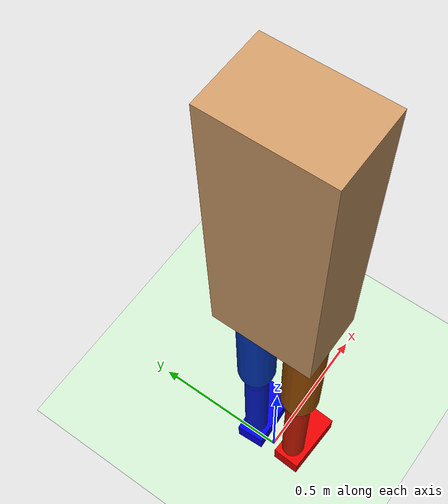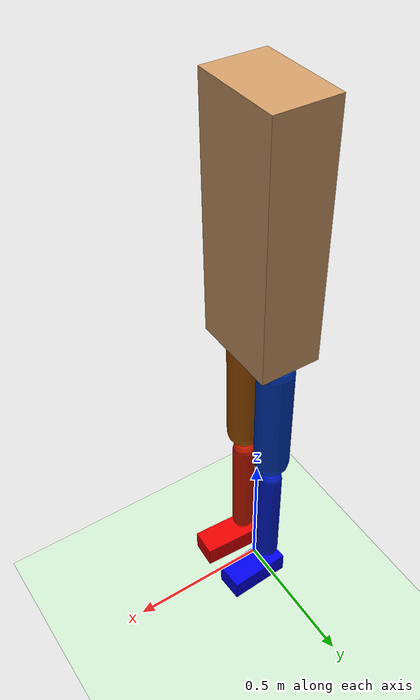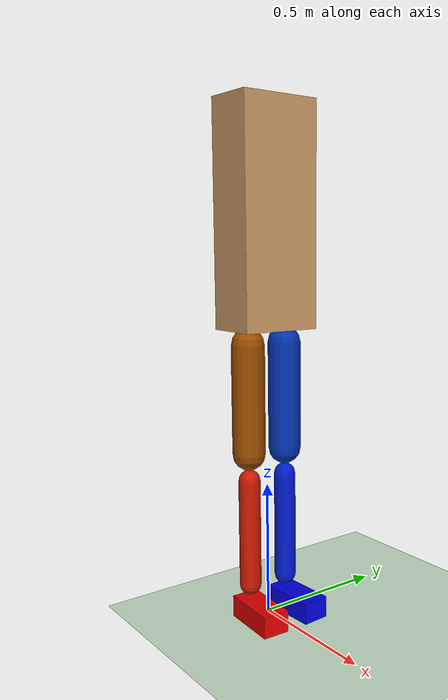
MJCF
<?xml version="1.0" ?>

<!--
7 segment model for human 3D walking simulation

Author: Guoping Zhao, Lauflabor, gpzhaome@gmail.com
All rights reserved
20180629
-->

<!--TODO: configure ground contact model-->

<mujoco model="human7">
    <compiler angle="radian" inertiafromgeom="false" coordinate="local"/>
    <default>
        <joint armature="0" damping="0" limited="true"/>
        <geom conaffinity="1" condim="1" contype="1" margin="0.001" material="geom" rgba="0.8 0.6 .4 1"/>
        <motor ctrllimited="true" ctrlrange="-.4 .4"/>
    </default>
    <option integrator="RK4" iterations="50" solver="PGS" timestep="0.0002">
    </option>
    <size nkey="5" nuser_geom="1"/>
    <visual>
        <map fogend="5" fogstart="3"/>
        <!--visualize contact force vector and coordination frame-->
        <scale forcewidth="0.05" contactwidth="0.02" contactheight="0.1" framelength="0.4" framewidth="0.02"/>
    </visual>
    <asset>
        <texture builtin="gradient" height="100" rgb1=".4 .5 .6" rgb2="0 0 0" type="skybox" width="100"/>
        <texture builtin="flat" height="1278" mark="cross" markrgb="1 1 1" name="texgeom" random="0.01" rgb1="0.8 0.6 0.4" rgb2="0.8 0.6 0.4" type="cube" width="127"/>
        <texture builtin="checker" height="100" name="texplane" rgb1="0 0 0" rgb2="0.8 0.8 0.8" type="2d" width="100"/>
        <material name="MatPlane" reflectance="0.5" shininess="1" specular="1" texrepeat="60 60" texture="texplane"/>
        <material name="geom" texture="texgeom" texuniform="true"/>
    </asset>
    <worldbody>
        <light cutoff="100" diffuse="1 1 1" dir="-0 0 -1.3" directional="true" exponent="1" pos="0 0 1.3" specular=".1 .1 .1"/>
        <geom condim="3" friction="1 .1 .1" material="MatPlane" name="floor" pos="0 0 0" rgba="0.8 0.9 0.8 1" size="20 20 0.125" type="plane"/>
        <body name="torso" pos="0 0 1.08">
            <camera name="track" mode="trackcom" pos="0 -4 0" xyaxes="1 0 0 0 0 1"/>

            <geom name="torso" size="0.1 0.15 0.4" pos="0 0 0.4" type="box"/>
            <!--Joint between world and torso-->
            <joint armature="0" damping="0" limited="false" name="root" pos="0 0 0" stiffness="0" type="free"/>
            <inertial pos="0 0 0.35" mass="53.5" diaginertia="2.5 4.0 1.5"/>
            <!--show center of mass position-->

            <!--define right thigh-->
            <body name="right_thigh" pos="0 -0.08 0">
                <!--joint range limit -45, 5 deg-->
                <joint name="right_hip_frontal" axis="1 0 0" armature="0" damping="0" range="-0.7854 0.0873" type="hinge"/>
                <!--joint range limit -50, 50 deg-->
                <joint name="right_hip_sagittal" axis="0 1 0" armature="0" damping="0" range="-0.8727 0.8727" type="hinge"/>
                <geom name="right_thigh" fromto="0 0 -0.05 0 0 -0.45" rgba="0.6 0.3 0 1" size="0.06" type="capsule"/>
                <inertial pos="0 0 -0.2" mass="8.5" diaginertia="0.15 0.15 0.03"/>
                <!--show center of mass position-->

                <!--define right shank-->
                <body name="right_shank" pos="0 0 -0.5">
                    <!--joint range limit 5, 150 deg-->
                    <joint name="right_knee" axis="0 1 0" armature="0" damping="0" range="0.0873 2.6180" type="hinge"/>
                    <!--TODO: length and com pos should be adjusted-->
                    <geom name="right_shank" fromto="0 0 -0.05 0 0 -0.45" rgba="0.8 0.1 0 1" size="0.04" type="capsule"/>
                    <inertial pos="0 0 -0.2" mass="3.5" diaginertia="0.05 0.05 0.003"/>
                    <!--show center of mass position-->

                    <!--define right foot-->
                    <!--TODO: pos should be adjusted according to the shank length-->
                    <body name="right_foot" pos="0 0 -0.5">
                        <!--joint range limit -20, 40-->
                        <joint name="right_ankle" axis="0 1 0" armature="0" damping="0" range="-0.3491 0.6981" type="hinge"/>
                        <!--TODO: change foot size/type to more realistic size/type-->
                        <geom axisangle="0 0 1 -.05" name="right_foot" size="0.11 0.05 0.04" pos="0.0675 -0.005 -0.04" rgba="0.9 0 0 1" type="box"/>
                        <inertial pos="0.06 0 -0.07" mass="1.5" diaginertia="0.003 0.006 0.005"/>
                        <!--show center of mass position-->

                        <!--TODO: add contact points-->
                    </body>
                </body>
            </body>

            <!--define left thigh-->
            <body name="left_thigh" pos="0 0.08 0">
                <!--joint range limit -5, 45 deg-->
                <joint name="left_hip_frontal" axis="1 0 0" armature="0" damping="0" range="-0.0873 0.7854" type="hinge"/>
                <joint name="left_hip_sagittal" axis="0 1 0" armature="0" damping="0" range="-0.8727 0.8727" type="hinge"/>
                <geom name="left_thigh" fromto="0 0 -0.05 0 0 -0.45" rgba="0 0.2 0.7 1" size="0.06" type="capsule"/>
                <inertial pos="0 0 -0.2" mass="8.5" diaginertia="0.15 0.15 0.03"/>
                <!--show center of mass position-->

                <!--define left shank-->
                <body name="left_shank" pos="0 0 -0.5">
                    <joint name="left_knee" axis="0 1 0" armature="0" damping="0" range="0.0873 2.6180" type="hinge"/>
                    <!--TODO: length and com pos should be adjusted-->
                    <geom name="left_shank" fromto="0 0 -0.05 0 0 -0.45" rgba="0 0.1 0.8 1" size="0.04" type="capsule"/>
                    <inertial pos="0 0 -0.2" mass="3.5" diaginertia="0.05 0.05 0.003"/>
                    <!--show center of mass position-->

                    <!--define left foot-->
                    <!--TODO: pos should be adjusted according to the shank length-->
                    <body name="left_foot" pos="0 0 -0.5">
                        <joint name="left_ankle" axis="0 1 0" armature="0" damping="0" range="-0.3491 0.6981" type="hinge"/>
                        <!--TODO: change foot size/type to more realistic size/type-->
                        <geom axisangle="0 0 1 .05" name="left_foot" size="0.11 0.05 0.04" pos="0.0675 0.005 -0.04" rgba="0 0 0.9 1" type="box"/>
                        <inertial pos="0.06 0 -0.07" mass="1.5" diaginertia="0.003 0.006 0.005"/>
                        <!--show center of mass position-->
                    </body>
                </body>
            </body>
        </body>
    </worldbody>

    <actuator>
        <motor ctrllimited="true" ctrlrange="-10000 10000" gear="1" joint="right_hip_frontal" name="right_hip_frontal"/>
        <motor ctrllimited="true" ctrlrange="-10000 10000" gear="1" joint="right_hip_sagittal" name="right_hip_sagittal"/>
        <motor ctrllimited="true" ctrlrange="-10000 10000" gear="1" joint="right_knee" name="right_knee"/>
        <motor ctrllimited="true" ctrlrange="-10000 10000" gear="1" joint="right_ankle" name="right_ankle"/>
        <motor ctrllimited="true" ctrlrange="-10000 10000" gear="1" joint="left_hip_frontal" name="left_hip_frontal"/>
        <motor ctrllimited="true" ctrlrange="-10000 10000" gear="1" joint="left_hip_sagittal" name="left_hip_sagittal"/>
        <motor ctrllimited="true" ctrlrange="-10000 10000" gear="1" joint="left_knee" name="left_knee"/>
        <motor ctrllimited="true" ctrlrange="-10000 10000" gear="1" joint="left_ankle" name="left_ankle"/>
    </actuator>

</mujoco>
